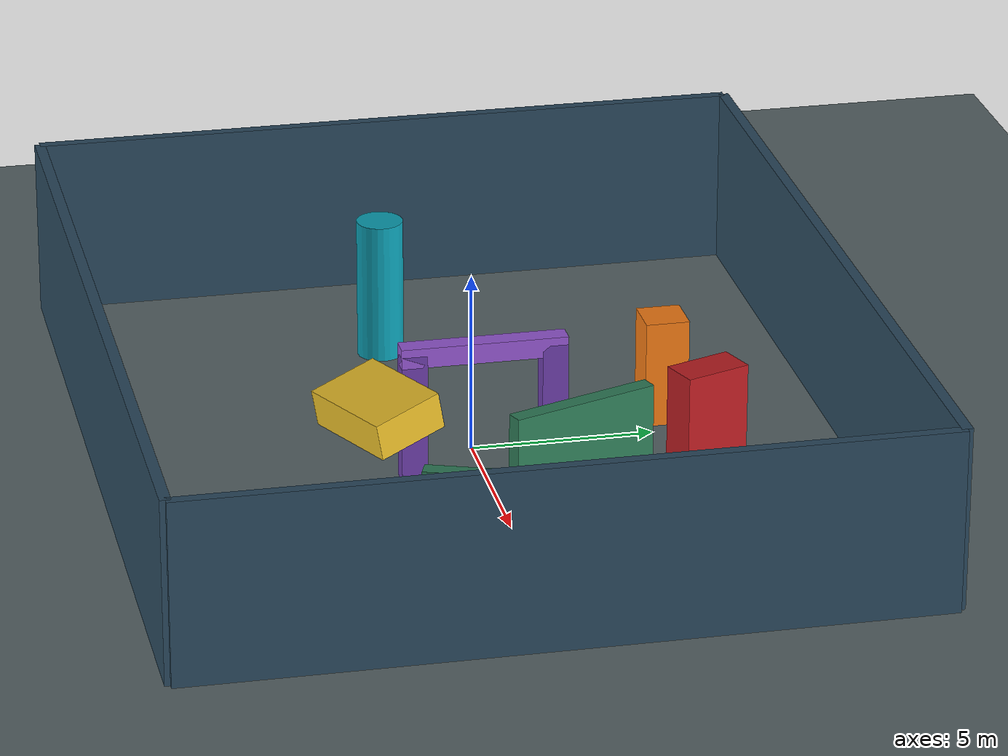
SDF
<sdf version="1.9">
 <world name="lidar_slam_course">
  <physics name="fast_stable" type="ode">
   <max_step_size>0.004</max_step_size>
   <real_time_factor>1.0</real_time_factor>
   <real_time_update_rate>250</real_time_update_rate>
  </physics>
  <gravity>0 0 -9.8</gravity>
  <magnetic_field>6e-06 2.3e-05 -4.2e-05</magnetic_field>
  <atmosphere type="adiabatic"/>
  <scene>
   <grid>true</grid>
   <ambient>0.34 0.38 0.43 1</ambient>
   <background>0.63 0.72 0.80 1</background>
   <shadows>true</shadows>
  </scene>
  <spherical_coordinates>
   <surface_model>EARTH_WGS84</surface_model>
   <world_frame_orientation>ENU</world_frame_orientation>
   <latitude_deg>47.397971057728974</latitude_deg>
   <longitude_deg>8.546163739800146</longitude_deg>
   <elevation>0</elevation>
  </spherical_coordinates>
  <light name="sun" type="directional">
   <pose>0 0 40 0 0 0</pose>
   <intensity>1.0</intensity>
   <direction>-0.35 0.2 -0.91</direction>
   <diffuse>0.95 0.92 0.84 1</diffuse>
   <specular>0.25 0.25 0.25 1</specular>
  </light>
  <model name="ground_plane">
   <static>true</static>
   <link name="link">
    <collision name="collision">
     <geometry><plane><normal>0 0 1</normal><size>50 40</size></plane></geometry>
    </collision>
    <visual name="visual">
     <geometry><plane><normal>0 0 1</normal><size>50 40</size></plane></geometry>
     <material>
      <ambient>0.23 0.27 0.29 1</ambient>
      <diffuse>0.34 0.39 0.40 1</diffuse>
      <specular>0.08 0.08 0.08 1</specular>
     </material>
    </visual>
   </link>
  </model>
  <model name="wall_north">
   <static>true</static>
   <pose>0 10 2.5 0 0 0</pose>
   <link name="link">
    <collision name="collision"><geometry><box><size>24 0.3 5</size></box></geometry></collision>
    <visual name="visual">
     <geometry><box><size>24 0.3 5</size></box></geometry>
     <material><diffuse>0.16 0.28 0.36 1</diffuse></material>
    </visual>
   </link>
  </model>
  <model name="wall_south">
   <static>true</static>
   <pose>0 -10 2.5 0 0 0</pose>
   <link name="link">
    <collision name="collision"><geometry><box><size>24 0.3 5</size></box></geometry></collision>
    <visual name="visual">
     <geometry><box><size>24 0.3 5</size></box></geometry>
     <material><diffuse>0.16 0.28 0.36 1</diffuse></material>
    </visual>
   </link>
  </model>
  <model name="wall_east">
   <static>true</static>
   <pose>12 0 2.5 0 0 0</pose>
   <link name="link">
    <collision name="collision"><geometry><box><size>0.3 20 5</size></box></geometry></collision>
    <visual name="visual">
     <geometry><box><size>0.3 20 5</size></box></geometry>
     <material><diffuse>0.16 0.28 0.36 1</diffuse></material>
    </visual>
   </link>
  </model>
  <model name="wall_west">
   <static>true</static>
   <pose>-12 0 2.5 0 0 0</pose>
   <link name="link">
    <collision name="collision"><geometry><box><size>0.3 20 5</size></box></geometry></collision>
    <visual name="visual">
     <geometry><box><size>0.3 20 5</size></box></geometry>
     <material><diffuse>0.16 0.28 0.36 1</diffuse></material>
    </visual>
   </link>
  </model>
  <model name="cyan_pillar">
   <static>true</static>
   <pose>-6.845569474049038 -1.186758871534423 2.0 0 0 0</pose>
   <link name="link">
    <collision name="collision">
     <geometry><cylinder><radius>0.65</radius><length>4</length></cylinder></geometry>
    </collision>
    <visual name="visual">
     <geometry><cylinder><radius>0.65</radius><length>4</length></cylinder></geometry>
     <material><diffuse>0.04 0.62 0.70 1</diffuse></material>
    </visual>
   </link>
  </model>
  <model name="amber_pillar">
   <static>true</static>
   <pose>-1.0 5.5 1.5 0 0 0</pose>
   <link name="link">
    <collision name="collision"><geometry><box><size>1.2 1.2 3</size></box></geometry></collision>
    <visual name="visual">
     <geometry><box><size>1.2 1.2 3</size></box></geometry>
     <material><diffuse>0.95 0.48 0.08 1</diffuse></material>
    </visual>
   </link>
  </model>
  <model name="red_pillar">
   <static>true</static>
   <pose>6.5 4.8 2.4 0 0 0.35</pose>
   <link name="link">
    <collision name="collision"><geometry><box><size>1.0 1.8 4.8</size></box></geometry></collision>
    <visual name="visual">
     <geometry><box><size>1.0 1.8 4.8</size></box></geometry>
     <material><diffuse>0.73 0.11 0.13 1</diffuse></material>
    </visual>
   </link>
  </model>
  <model name="gate_left">
   <static>true</static>
   <pose>1.5 -1.9 1.8 0 0 0</pose>
   <link name="link">
    <collision name="collision"><geometry><box><size>0.55 0.7 3.6</size></box></geometry></collision>
    <visual name="visual">
     <geometry><box><size>0.55 0.7 3.6</size></box></geometry>
     <material><diffuse>0.42 0.24 0.66 1</diffuse></material>
    </visual>
   </link>
  </model>
  <model name="gate_right">
   <static>true</static>
   <pose>1.5 1.9 1.8 0 0 0</pose>
   <link name="link">
    <collision name="collision"><geometry><box><size>0.55 0.7 3.6</size></box></geometry></collision>
    <visual name="visual">
     <geometry><box><size>0.55 0.7 3.6</size></box></geometry>
     <material><diffuse>0.42 0.24 0.66 1</diffuse></material>
    </visual>
   </link>
  </model>
  <model name="gate_top">
   <static>true</static>
   <pose>1.5 0 3.55 0 0 0</pose>
   <link name="link">
    <collision name="collision"><geometry><box><size>0.55 4.5 0.55</size></box></geometry></collision>
    <visual name="visual">
     <geometry><box><size>0.55 4.5 0.55</size></box></geometry>
     <material><diffuse>0.58 0.34 0.82 1</diffuse></material>
    </visual>
   </link>
  </model>
  <model name="suspended_block">
   <static>true</static>
   <pose>5.0 -3.5 3.7 0.2 0.0 0.45</pose>
   <link name="link">
    <collision name="collision"><geometry><box><size>2.8 2.0 1.0</size></box></geometry></collision>
    <visual name="visual">
     <geometry><box><size>2.8 2.0 1.0</size></box></geometry>
     <material><diffuse>0.91 0.74 0.16 1</diffuse></material>
    </visual>
   </link>
  </model>
  <model name="slalom_wall_a">
   <static>true</static>
   <pose>4.0 2.1 1.5 0 0 0.35</pose>
   <link name="link">
    <collision name="collision"><geometry><box><size>0.45 4.2 3.0</size></box></geometry></collision>
    <visual name="visual">
     <geometry><box><size>0.45 4.2 3.0</size></box></geometry>
     <material><diffuse>0.18 0.48 0.34 1</diffuse></material>
    </visual>
   </link>
  </model>
  <model name="slalom_wall_b">
   <static>true</static>
   <pose>8.0 -0.8 1.5 0 0 -0.35</pose>
   <link name="link">
    <collision name="collision"><geometry><box><size>0.45 4.2 3.0</size></box></geometry></collision>
    <visual name="visual">
     <geometry><box><size>0.45 4.2 3.0</size></box></geometry>
     <material><diffuse>0.18 0.48 0.34 1</diffuse></material>
    </visual>
   </link>
  </model>
 </world>
</sdf>
